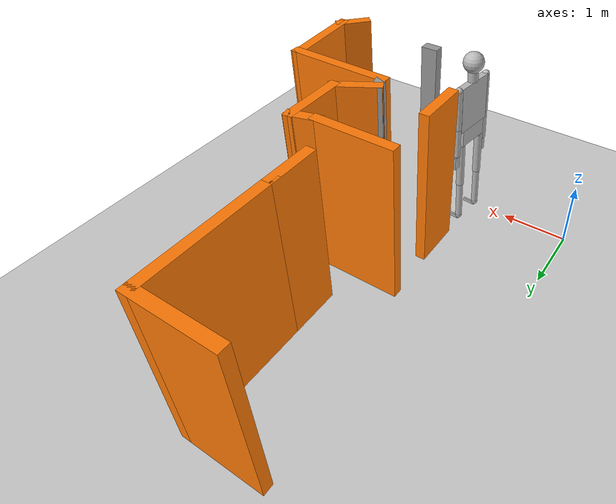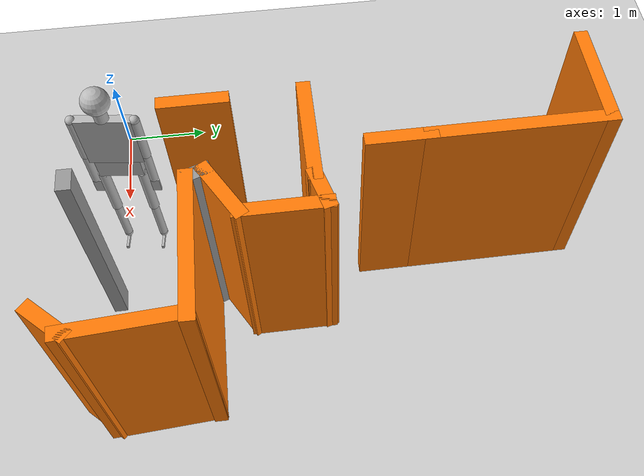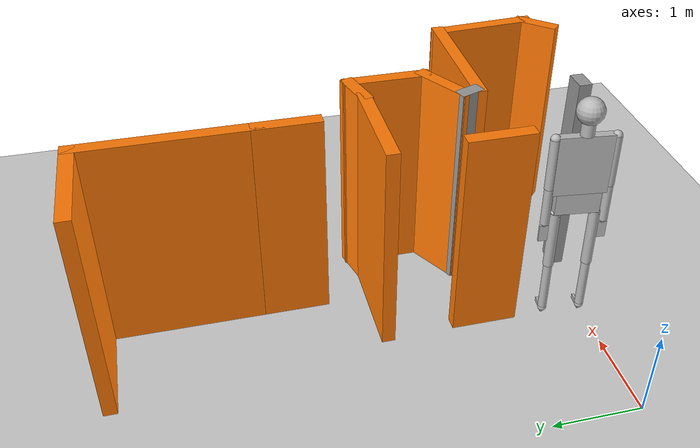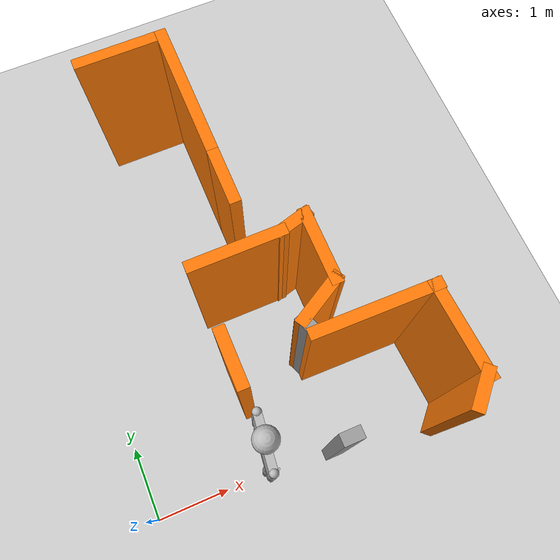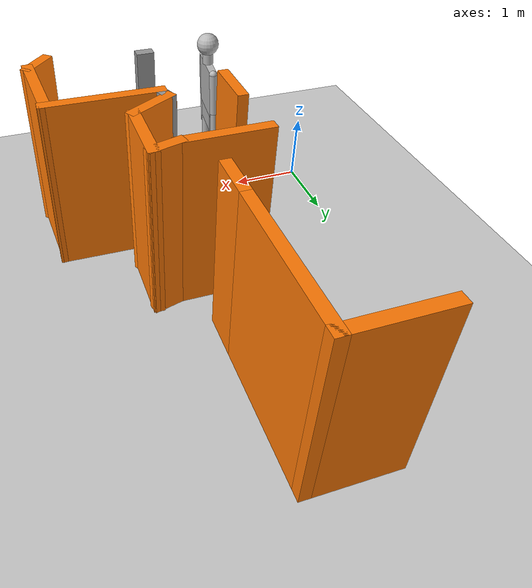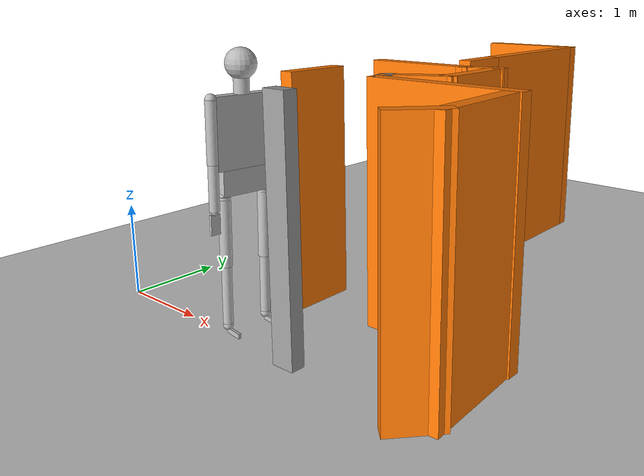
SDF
<sdf version="1.7">
 <world name="default">
  <model name="ground_plane">
   <static>1</static>
   <link name="link">
    <collision name="collision">
     <geometry><plane><normal>0 0 1</normal><size>100 100</size></plane></geometry>
     <surface>
      <contact><collide_bitmask>65535</collide_bitmask></contact>
      <friction><ode><mu>100</mu><mu2>50</mu2></ode></friction>
     </surface>
    </collision>
    <visual name="visual">
     <cast_shadows>0</cast_shadows>
     <geometry><plane><normal>0 0 1</normal><size>100 100</size></plane></geometry>
     <material>
      <script><uri>file://media/materials/scripts/gazebo.material</uri><name>Gazebo/Grey</name></script>
     </material>
    </visual>
   </link>
  </model>
  <model name="map_4">
   <pose>0.04124 -0.27835 0 0 -0 0</pose>
   <link name="Wall_122">
    <collision name="Wall_122_Collision">
     <geometry><box><size>0.75 0.15 2.5</size></box></geometry>
     <pose>0 0 1.25 0 -0 0</pose>
    </collision>
    <visual name="Wall_122_Visual">
     <pose>0 0 1.25 0 -0 0</pose>
     <geometry><box><size>0.75 0.15 2.5</size></box></geometry>
     <material>
      <script><uri>file://media/materials/scripts/gazebo.material</uri><name>Gazebo/Grey</name></script>
      <ambient>0.996078 0.47451 0.0196078 1</ambient>
     </material>
     <meta><layer>0</layer></meta>
    </visual>
    <pose>1.61782 1.43727 0 0 -0 -1.5708</pose>
   </link>
   <link name="Wall_134">
    <collision name="Wall_134_Collision">
     <geometry><box><size>0.25 0.15 2.5</size></box></geometry>
     <pose>0 0 1.25 0 -0 0</pose>
    </collision>
    <visual name="Wall_134_Visual">
     <pose>0 0 1.25 0 -0 0</pose>
     <geometry><box><size>0.25 0.15 2.5</size></box></geometry>
     <material>
      <script><uri>file://media/materials/scripts/gazebo.material</uri><name>Gazebo/Grey</name></script>
      <ambient>1 1 1 1</ambient>
     </material>
     <meta><layer>0</layer></meta>
    </visual>
    <pose>2.46924 0.189335 0 0 -0 0</pose>
   </link>
   <link name="Wall_140">
    <collision name="Wall_140_Collision">
     <geometry><box><size>0.53772 0.15 2.5</size></box></geometry>
     <pose>0 0 1.25 0 -0 0</pose>
    </collision>
    <visual name="Wall_140_Visual">
     <pose>0 0 1.25 0 -0 0</pose>
     <geometry><box><size>0.53772 0.15 2.5</size></box></geometry>
     <material>
      <script><uri>file://media/materials/scripts/gazebo.material</uri><name>Gazebo/Grey</name></script>
      <ambient>0.996078 0.47451 0.0196078 1</ambient>
     </material>
     <meta><layer>0</layer></meta>
    </visual>
    <pose>3.95601 0.095884 0 0 -0 0.827595</pose>
   </link>
   <link name="Wall_141">
    <collision name="Wall_141_Collision">
     <geometry><box><size>1.27527 0.15 2.5</size></box></geometry>
     <pose>0 0 1.25 0 -0 0</pose>
    </collision>
    <visual name="Wall_141_Visual">
     <pose>0 0 1.25 0 -0 0</pose>
     <geometry><box><size>1.27527 0.15 2.5</size></box></geometry>
     <material>
      <script><uri>file://media/materials/scripts/gazebo.material</uri><name>Gazebo/Grey</name></script>
      <ambient>0.996078 0.47451 0.0196078 1</ambient>
     </material>
     <meta><layer>0</layer></meta>
    </visual>
    <pose>4.05249 0.753929 0 0 -0 1.6325</pose>
   </link>
   <link name="Wall_142">
    <collision name="Wall_142_Collision">
     <geometry><box><size>1.63453 0.15 2.5</size></box></geometry>
     <pose>0 0 1.25 0 -0 0</pose>
    </collision>
    <visual name="Wall_142_Visual">
     <pose>0 0 1.25 0 -0 0</pose>
     <geometry><box><size>1.63453 0.15 2.5</size></box></geometry>
     <material>
      <script><uri>file://media/materials/scripts/gazebo.material</uri><name>Gazebo/Grey</name></script>
      <ambient>0.996078 0.47451 0.0196078 1</ambient>
     </material>
     <meta><layer>0</layer></meta>
    </visual>
    <pose>3.29875 1.32706 0 0 -0 3.12601</pose>
   </link>
   <link name="Wall_143">
    <collision name="Wall_143_Collision">
     <geometry><box><size>0.29196 0.15 2.5</size></box></geometry>
     <pose>0 0 1.25 0 -0 0</pose>
    </collision>
    <visual name="Wall_143_Visual">
     <pose>0 0 1.25 0 -0 0</pose>
     <geometry><box><size>0.29196 0.15 2.5</size></box></geometry>
     <material>
      <script><uri>file://media/materials/scripts/gazebo.material</uri><name>Gazebo/Grey</name></script>
      <ambient>1 1 1 1</ambient>
     </material>
     <meta><layer>0</layer></meta>
    </visual>
    <pose>2.53157 1.45132 0 0 -0 1.93073</pose>
   </link>
   <link name="Wall_144">
    <collision name="Wall_144_Collision">
     <geometry><box><size>0.75 0.15 2.5</size></box></geometry>
     <pose>0 0 1.25 0 -0 0</pose>
    </collision>
    <visual name="Wall_144_Visual">
     <pose>0 0 1.25 0 -0 0</pose>
     <geometry><box><size>0.75 0.15 2.5</size></box></geometry>
     <material>
      <script><uri>file://media/materials/scripts/gazebo.material</uri><name>Gazebo/Grey</name></script>
      <ambient>0.996078 0.47451 0.0196078 1</ambient>
     </material>
     <meta><layer>0</layer></meta>
    </visual>
    <pose>2.76638 1.66775 0 0 -0 0.523599</pose>
   </link>
   <link name="Wall_146">
    <collision name="Wall_146_Collision">
     <geometry><box><size>1 0.15 2.5</size></box></geometry>
     <pose>0 0 1.25 0 -0 0</pose>
    </collision>
    <visual name="Wall_146_Visual">
     <pose>0 0 1.25 0 -0 0</pose>
     <geometry><box><size>1 0.15 2.5</size></box></geometry>
     <material>
      <script><uri>file://media/materials/scripts/gazebo.material</uri><name>Gazebo/Grey</name></script>
      <ambient>0.996078 0.47451 0.0196078 1</ambient>
     </material>
     <meta><layer>0</layer></meta>
    </visual>
    <pose>3.02619 2.24275 0 0 -0 1.5708</pose>
   </link>
   <link name="Wall_147">
    <collision name="Wall_147_Collision">
     <geometry><box><size>0.5 0.15 2.5</size></box></geometry>
     <pose>0 0 1.25 0 -0 0</pose>
    </collision>
    <visual name="Wall_147_Visual">
     <pose>0 0 1.25 0 -0 0</pose>
     <geometry><box><size>0.5 0.15 2.5</size></box></geometry>
     <material>
      <script><uri>file://media/materials/scripts/gazebo.material</uri><name>Gazebo/Grey</name></script>
      <ambient>0.996078 0.47451 0.0196078 1</ambient>
     </material>
     <meta><layer>0</layer></meta>
    </visual>
    <pose>2.85715 2.62246 0 0 -0 -2.87979</pose>
   </link>
   <link name="Wall_148">
    <collision name="Wall_148_Collision">
     <geometry><box><size>1.25 0.15 2.5</size></box></geometry>
     <pose>0 0 1.25 0 -0 0</pose>
    </collision>
    <visual name="Wall_148_Visual">
     <pose>0 0 1.25 0 -0 0</pose>
     <geometry><box><size>1.25 0.15 2.5</size></box></geometry>
     <material>
      <script><uri>file://media/materials/scripts/gazebo.material</uri><name>Gazebo/Grey</name></script>
      <ambient>0.996078 0.47451 0.0196078 1</ambient>
     </material>
     <meta><layer>0</layer></meta>
    </visual>
    <pose>2.13811 2.57716 0 0 -0 3.14159</pose>
   </link>
   <link name="Wall_153">
    <collision name="Wall_153_Collision">
     <geometry><box><size>0.75 0.15 2.5</size></box></geometry>
     <pose>0 0 1.25 0 -0 0</pose>
    </collision>
    <visual name="Wall_153_Visual">
     <pose>0 0 1.25 0 -0 0</pose>
     <geometry><box><size>0.75 0.15 2.5</size></box></geometry>
     <material>
      <script><uri>file://media/materials/scripts/gazebo.material</uri><name>Gazebo/Grey</name></script>
      <ambient>0.996078 0.47451 0.0196078 1</ambient>
     </material>
     <meta><layer>0</layer></meta>
    </visual>
    <pose>2.34063 3.47465 0 0 -0 1.5708</pose>
   </link>
   <link name="Wall_154">
    <collision name="Wall_154_Collision">
     <geometry><box><size>2 0.15 2.5</size></box></geometry>
     <pose>0 0 1.25 0 -0 0</pose>
    </collision>
    <visual name="Wall_154_Visual">
     <pose>0 0 1.25 0 -0 0</pose>
     <geometry><box><size>2 0.15 2.5</size></box></geometry>
     <material>
      <script><uri>file://media/materials/scripts/gazebo.material</uri><name>Gazebo/Grey</name></script>
      <ambient>0.996078 0.47451 0.0196078 1</ambient>
     </material>
     <meta><layer>0</layer></meta>
    </visual>
    <pose>2.34063 4.69965 0 0 -0 1.5708</pose>
   </link>
   <link name="Wall_159">
    <collision name="Wall_159_Collision">
     <geometry><box><size>1.25 0.15 2.5</size></box></geometry>
     <pose>0 0 1.25 0 -0 0</pose>
    </collision>
    <visual name="Wall_159_Visual">
     <pose>0 0 1.25 0 -0 0</pose>
     <geometry><box><size>1.25 0.15 2.5</size></box></geometry>
     <material>
      <script><uri>file://media/materials/scripts/gazebo.material</uri><name>Gazebo/Grey</name></script>
      <ambient>0.996078 0.47451 0.0196078 1</ambient>
     </material>
     <meta><layer>0</layer></meta>
    </visual>
    <pose>1.79063 5.62465 0 0 -0 3.14159</pose>
   </link>
   <static>1</static>
  </model>
  <model name="ragdoll">
   <pose>1.63109 0.219193 1.39973 -5.3e-05 0.035778 -0.116369</pose>
   <link name="hip">
    <inertial>
     <inertia><ixx>0.1</ixx><ixy>0</ixy><ixz>0</ixz><iyy>0.1</iyy><iyz>0</iyz><izz>0.1</izz></inertia>
     <mass>10</mass>
    </inertial>
    <collision name="hip_geom">
     <pose>0 0 0.125 0 -0 0</pose>
     <geometry><box><size>0.1 0.5 0.25</size></box></geometry>
     <surface>
      <friction><ode><mu>-1</mu><mu2>-1</mu2><fdir1>0 0 0</fdir1><slip1>0</slip1><slip2>0</slip2></ode></friction>
      <bounce><restitution_coefficient>0</restitution_coefficient><threshold>100000</threshold></bounce>
      <contact>
       <ode>
        <soft_cfm>0</soft_cfm>
        <soft_erp>0.2</soft_erp>
        <kp>1e+12</kp>
        <kd>1</kd>
        <max_vel>0</max_vel>
        <min_depth>0.001</min_depth>
       </ode>
      </contact>
     </surface>
    </collision>
    <visual name="hip_geom_visual">
     <pose>0 0 0.125 0 -0 0</pose>
     <geometry><box><size>0.1 0.5 0.25</size></box></geometry>
    </visual>
    <gravity>0</gravity>
   </link>
   <link name="l_thigh_pan">
    <pose>0 0.22 0 0 -0 0</pose>
    <inertial>
     <inertia><ixx>0.01</ixx><ixy>0</ixy><ixz>0</ixz><iyy>0.01</iyy><iyz>0</iyz><izz>0.01</izz></inertia>
     <mass>1</mass>
    </inertial>
    <collision name="l_thigh_pan_geom">
     <pose>0 0 -0.03 0 -0 0</pose>
     <geometry><sphere><radius>0.06</radius></sphere></geometry>
     <surface>
      <friction><ode><mu>-1</mu><mu2>-1</mu2><fdir1>0 0 0</fdir1><slip1>0</slip1><slip2>0</slip2></ode></friction>
      <bounce><restitution_coefficient>0</restitution_coefficient><threshold>100000</threshold></bounce>
      <contact>
       <ode>
        <soft_cfm>0</soft_cfm>
        <soft_erp>0.2</soft_erp>
        <kp>1e+12</kp>
        <kd>1</kd>
        <max_vel>0</max_vel>
        <min_depth>0.001</min_depth>
       </ode>
      </contact>
     </surface>
    </collision>
    <visual name="l_thigh_pan_geom_visual">
     <pose>0 0 -0.03 0 -0 0</pose>
     <geometry><sphere><radius>0.06</radius></sphere></geometry>
    </visual>
    <gravity>0</gravity>
   </link>
   <link name="l_thigh_lift">
    <pose>0 0.22 0 0 -0 0</pose>
    <inertial>
     <inertia><ixx>0.05</ixx><ixy>0</ixy><ixz>0</ixz><iyy>0.05</iyy><iyz>0</iyz><izz>0.05</izz></inertia>
     <mass>5</mass>
    </inertial>
    <collision name="l_thigh_lift_geom">
     <pose>0 0 -0.35 0 -0 0</pose>
     <geometry><cylinder><radius>0.06</radius><length>0.7</length></cylinder></geometry>
     <surface>
      <friction><ode><mu>-1</mu><mu2>-1</mu2><fdir1>0 0 0</fdir1><slip1>0</slip1><slip2>0</slip2></ode></friction>
      <bounce><restitution_coefficient>0</restitution_coefficient><threshold>100000</threshold></bounce>
      <contact>
       <ode>
        <soft_cfm>0</soft_cfm>
        <soft_erp>0.2</soft_erp>
        <kp>1e+12</kp>
        <kd>1</kd>
        <max_vel>0</max_vel>
        <min_depth>0.001</min_depth>
       </ode>
      </contact>
     </surface>
    </collision>
    <visual name="l_thigh_lift_geom_visual">
     <pose>0 0 -0.35 0 -0 0</pose>
     <geometry><cylinder><radius>0.06</radius><length>0.7</length></cylinder></geometry>
    </visual>
    <gravity>0</gravity>
   </link>
   <link name="l_calf">
    <pose>0 0.22 -0.7 0 -0 0</pose>
    <inertial>
     <inertia><ixx>0.02</ixx><ixy>0</ixy><ixz>0</ixz><iyy>0.02</iyy><iyz>0</iyz><izz>0.02</izz></inertia>
     <mass>2</mass>
    </inertial>
    <collision name="l_calf_geom">
     <pose>0 0 -0.3 0 -0 0</pose>
     <geometry><cylinder><radius>0.05</radius><length>0.6</length></cylinder></geometry>
     <surface>
      <friction><ode><mu>-1</mu><mu2>-1</mu2><fdir1>0 0 0</fdir1><slip1>0</slip1><slip2>0</slip2></ode></friction>
      <bounce><restitution_coefficient>0</restitution_coefficient><threshold>100000</threshold></bounce>
      <contact>
       <ode>
        <soft_cfm>0</soft_cfm>
        <soft_erp>0.2</soft_erp>
        <kp>1e+12</kp>
        <kd>1</kd>
        <max_vel>0</max_vel>
        <min_depth>0.001</min_depth>
       </ode>
      </contact>
     </surface>
    </collision>
    <visual name="l_calf_geom_visual">
     <pose>0 0 -0.3 0 -0 0</pose>
     <geometry><cylinder><radius>0.05</radius><length>0.6</length></cylinder></geometry>
    </visual>
    <gravity>0</gravity>
   </link>
   <link name="l_ankle">
    <pose>0 0.22 -1.325 0 -0 0</pose>
    <inertial>
     <inertia><ixx>0.01</ixx><ixy>0</ixy><ixz>0</ixz><iyy>0.01</iyy><iyz>0</iyz><izz>0.01</izz></inertia>
     <mass>1</mass>
    </inertial>
    <collision name="l_ankle_geom">
     <geometry><sphere><radius>0.05</radius></sphere></geometry>
     <surface>
      <friction><ode><mu>-1</mu><mu2>-1</mu2><fdir1>0 0 0</fdir1><slip1>0</slip1><slip2>0</slip2></ode></friction>
      <bounce><restitution_coefficient>0</restitution_coefficient><threshold>100000</threshold></bounce>
      <contact>
       <ode>
        <soft_cfm>0</soft_cfm>
        <soft_erp>0.2</soft_erp>
        <kp>1e+12</kp>
        <kd>1</kd>
        <max_vel>0</max_vel>
        <min_depth>0.001</min_depth>
       </ode>
      </contact>
     </surface>
    </collision>
    <visual name="l_ankle_geom_visual"><geometry><sphere><radius>0.05</radius></sphere></geometry></visual>
    <gravity>0</gravity>
   </link>
   <link name="l_foot">
    <pose>0 0.22 -1.35 0 -0 0</pose>
    <inertial>
     <pose>0.1 0 0 0 -0 0</pose>
     <inertia><ixx>0.01</ixx><ixy>0</ixy><ixz>0</ixz><iyy>0.01</iyy><iyz>0</iyz><izz>0.01</izz></inertia>
     <mass>1</mass>
    </inertial>
    <collision name="l_foot_geom">
     <pose>0.1 0 -0.025 0 -0 0</pose>
     <geometry><box><size>0.2 0.03 0.05</size></box></geometry>
     <surface>
      <friction><ode><mu>-1</mu><mu2>-1</mu2><fdir1>0 0 0</fdir1><slip1>0</slip1><slip2>0</slip2></ode></friction>
      <bounce><restitution_coefficient>0</restitution_coefficient><threshold>100000</threshold></bounce>
      <contact>
       <ode>
        <soft_cfm>0</soft_cfm>
        <soft_erp>0.2</soft_erp>
        <kp>1e+12</kp>
        <kd>1</kd>
        <max_vel>0</max_vel>
        <min_depth>0.001</min_depth>
       </ode>
      </contact>
     </surface>
    </collision>
    <visual name="l_foot_geom_visual">
     <pose>0.1 0 -0.025 0 -0 0</pose>
     <geometry><box><size>0.2 0.03 0.05</size></box></geometry>
    </visual>
   </link>
   <link name="r_thigh_pan">
    <pose>0 -0.22 0 0 -0 0</pose>
    <inertial>
     <inertia><ixx>0.01</ixx><ixy>0</ixy><ixz>0</ixz><iyy>0.01</iyy><iyz>0</iyz><izz>0.01</izz></inertia>
     <mass>1</mass>
    </inertial>
    <collision name="r_thigh_pan_geom">
     <pose>0 0 -0.03 0 -0 0</pose>
     <geometry><sphere><radius>0.06</radius></sphere></geometry>
     <surface>
      <friction><ode><mu>-1</mu><mu2>-1</mu2><fdir1>0 0 0</fdir1><slip1>0</slip1><slip2>0</slip2></ode></friction>
      <bounce><restitution_coefficient>0</restitution_coefficient><threshold>100000</threshold></bounce>
      <contact>
       <ode>
        <soft_cfm>0</soft_cfm>
        <soft_erp>0.2</soft_erp>
        <kp>1e+12</kp>
        <kd>1</kd>
        <max_vel>0</max_vel>
        <min_depth>0.001</min_depth>
       </ode>
      </contact>
     </surface>
    </collision>
    <visual name="r_thigh_pan_geom_visual">
     <pose>0 0 -0.03 0 -0 0</pose>
     <geometry><sphere><radius>0.06</radius></sphere></geometry>
    </visual>
    <gravity>0</gravity>
   </link>
   <link name="r_thigh_lift">
    <pose>0 -0.22 0 0 -0 0</pose>
    <inertial>
     <inertia><ixx>0.05</ixx><ixy>0</ixy><ixz>0</ixz><iyy>0.05</iyy><iyz>0</iyz><izz>0.05</izz></inertia>
     <mass>5</mass>
    </inertial>
    <collision name="r_thigh_lift_geom">
     <pose>0 0 -0.35 0 -0 0</pose>
     <geometry><cylinder><radius>0.06</radius><length>0.7</length></cylinder></geometry>
     <surface>
      <friction><ode><mu>-1</mu><mu2>-1</mu2><fdir1>0 0 0</fdir1><slip1>0</slip1><slip2>0</slip2></ode></friction>
      <bounce><restitution_coefficient>0</restitution_coefficient><threshold>100000</threshold></bounce>
      <contact>
       <ode>
        <soft_cfm>0</soft_cfm>
        <soft_erp>0.2</soft_erp>
        <kp>1e+12</kp>
        <kd>1</kd>
        <max_vel>0</max_vel>
        <min_depth>0.001</min_depth>
       </ode>
      </contact>
     </surface>
    </collision>
    <visual name="r_thigh_lift_geom_visual">
     <pose>0 0 -0.35 0 -0 0</pose>
     <geometry><cylinder><radius>0.06</radius><length>0.7</length></cylinder></geometry>
    </visual>
    <gravity>0</gravity>
   </link>
   <link name="r_calf">
    <pose>0 -0.22 -0.7 0 -0 0</pose>
    <inertial>
     <inertia><ixx>0.02</ixx><ixy>0</ixy><ixz>0</ixz><iyy>0.02</iyy><iyz>0</iyz><izz>0.02</izz></inertia>
     <mass>2</mass>
    </inertial>
    <collision name="r_calf_geom">
     <pose>0 0 -0.3 0 -0 0</pose>
     <geometry><cylinder><radius>0.05</radius><length>0.6</length></cylinder></geometry>
     <surface>
      <friction><ode><mu>-1</mu><mu2>-1</mu2><fdir1>0 0 0</fdir1><slip1>0</slip1><slip2>0</slip2></ode></friction>
      <bounce><restitution_coefficient>0</restitution_coefficient><threshold>100000</threshold></bounce>
      <contact>
       <ode>
        <soft_cfm>0</soft_cfm>
        <soft_erp>0.2</soft_erp>
        <kp>1e+12</kp>
        <kd>1</kd>
        <max_vel>0</max_vel>
        <min_depth>0.001</min_depth>
       </ode>
      </contact>
     </surface>
    </collision>
    <visual name="r_calf_geom_visual">
     <pose>0 0 -0.3 0 -0 0</pose>
     <geometry><cylinder><radius>0.05</radius><length>0.6</length></cylinder></geometry>
    </visual>
    <gravity>0</gravity>
   </link>
   <link name="r_ankle">
    <pose>0 -0.22 -1.325 0 -0 0</pose>
    <inertial>
     <inertia><ixx>0.01</ixx><ixy>0</ixy><ixz>0</ixz><iyy>0.01</iyy><iyz>0</iyz><izz>0.01</izz></inertia>
     <mass>1</mass>
    </inertial>
    <collision name="r_ankle_geom">
     <geometry><sphere><radius>0.05</radius></sphere></geometry>
     <surface>
      <friction><ode><mu>-1</mu><mu2>-1</mu2><fdir1>0 0 0</fdir1><slip1>0</slip1><slip2>0</slip2></ode></friction>
      <bounce><restitution_coefficient>0</restitution_coefficient><threshold>100000</threshold></bounce>
      <contact>
       <ode>
        <soft_cfm>0</soft_cfm>
        <soft_erp>0.2</soft_erp>
        <kp>1e+12</kp>
        <kd>1</kd>
        <max_vel>0</max_vel>
        <min_depth>0.001</min_depth>
       </ode>
      </contact>
     </surface>
    </collision>
    <visual name="r_ankle_geom_visual"><geometry><sphere><radius>0.05</radius></sphere></geometry></visual>
    <gravity>0</gravity>
   </link>
   <link name="r_foot">
    <pose>0 -0.22 -1.35 0 -0 0</pose>
    <inertial>
     <pose>0.1 0 0 0 -0 0</pose>
     <inertia><ixx>0.01</ixx><ixy>0</ixy><ixz>0</ixz><iyy>0.01</iyy><iyz>0</iyz><izz>0.01</izz></inertia>
     <mass>1</mass>
    </inertial>
    <collision name="r_foot_geom">
     <pose>0.1 0 -0.025 0 -0 0</pose>
     <geometry><box><size>0.2 0.03 0.05</size></box></geometry>
     <surface>
      <friction><ode><mu>-1</mu><mu2>-1</mu2><fdir1>0 0 0</fdir1><slip1>0</slip1><slip2>0</slip2></ode></friction>
      <bounce><restitution_coefficient>0</restitution_coefficient><threshold>100000</threshold></bounce>
      <contact>
       <ode>
        <soft_cfm>0</soft_cfm>
        <soft_erp>0.2</soft_erp>
        <kp>1e+12</kp>
        <kd>1</kd>
        <max_vel>0</max_vel>
        <min_depth>0.001</min_depth>
       </ode>
      </contact>
     </surface>
    </collision>
    <visual name="r_foot_geom_visual">
     <pose>0.1 0 -0.025 0 -0 0</pose>
     <geometry><box><size>0.2 0.03 0.05</size></box></geometry>
    </visual>
   </link>
   <link name="torso">
    <pose>0 0 0.25 0 -0 0</pose>
    <inertial>
     <inertia><ixx>0.3</ixx><ixy>0</ixy><ixz>0</ixz><iyy>0.3</iyy><iyz>0</iyz><izz>0.3</izz></inertia>
     <mass>30</mass>
    </inertial>
    <collision name="torso_geom">
     <pose>0 0 0.35 0 -0 0</pose>
     <geometry><box><size>0.1 0.6 0.7</size></box></geometry>
     <surface>
      <friction><ode><mu>-1</mu><mu2>-1</mu2><fdir1>0 0 0</fdir1><slip1>0</slip1><slip2>0</slip2></ode></friction>
      <bounce><restitution_coefficient>0</restitution_coefficient><threshold>100000</threshold></bounce>
      <contact>
       <ode>
        <soft_cfm>0</soft_cfm>
        <soft_erp>0.2</soft_erp>
        <kp>1e+12</kp>
        <kd>1</kd>
        <max_vel>0</max_vel>
        <min_depth>0.001</min_depth>
       </ode>
      </contact>
     </surface>
    </collision>
    <visual name="torso_geom_visual">
     <pose>0 0 0.35 0 -0 0</pose>
     <geometry><box><size>0.1 0.6 0.7</size></box></geometry>
    </visual>
    <gravity>0</gravity>
   </link>
   <link name="l_shoulder">
    <pose>0 0.3275 0.9225 0 -0 0</pose>
    <inertial>
     <inertia><ixx>0.01</ixx><ixy>0</ixy><ixz>0</ixz><iyy>0.01</iyy><iyz>0</iyz><izz>0.01</izz></inertia>
     <mass>1</mass>
    </inertial>
    <collision name="l_shoulder_geom">
     <geometry><sphere><radius>0.055</radius></sphere></geometry>
     <surface>
      <friction><ode><mu>-1</mu><mu2>-1</mu2><fdir1>0 0 0</fdir1><slip1>0</slip1><slip2>0</slip2></ode></friction>
      <bounce><restitution_coefficient>0</restitution_coefficient><threshold>100000</threshold></bounce>
      <contact>
       <ode>
        <soft_cfm>0</soft_cfm>
        <soft_erp>0.2</soft_erp>
        <kp>1e+12</kp>
        <kd>1</kd>
        <max_vel>0</max_vel>
        <min_depth>0.001</min_depth>
       </ode>
      </contact>
     </surface>
    </collision>
    <visual name="l_shoulder_geom_visual"><geometry><sphere><radius>0.055</radius></sphere></geometry></visual>
    <gravity>0</gravity>
   </link>
   <link name="l_upper_arm">
    <pose>0 0.3275 0.9225 0 -0 0</pose>
    <inertial>
     <inertia><ixx>0.02</ixx><ixy>0</ixy><ixz>0</ixz><iyy>0.02</iyy><iyz>0</iyz><izz>0.02</izz></inertia>
     <mass>2</mass>
    </inertial>
    <collision name="l_upper_arm_geom">
     <pose>0 0 -0.3 0 -0 0</pose>
     <geometry><cylinder><radius>0.055</radius><length>0.6</length></cylinder></geometry>
     <surface>
      <friction><ode><mu>-1</mu><mu2>-1</mu2><fdir1>0 0 0</fdir1><slip1>0</slip1><slip2>0</slip2></ode></friction>
      <bounce><restitution_coefficient>0</restitution_coefficient><threshold>100000</threshold></bounce>
      <contact>
       <ode>
        <soft_cfm>0</soft_cfm>
        <soft_erp>0.2</soft_erp>
        <kp>1e+12</kp>
        <kd>1</kd>
        <max_vel>0</max_vel>
        <min_depth>0.001</min_depth>
       </ode>
      </contact>
     </surface>
    </collision>
    <visual name="l_upper_arm_geom_visual">
     <pose>0 0 -0.3 0 -0 0</pose>
     <geometry><cylinder><radius>0.055</radius><length>0.6</length></cylinder></geometry>
    </visual>
    <gravity>0</gravity>
   </link>
   <link name="l_forearm">
    <pose>0 0.3275 0.3225 0 -0 0</pose>
    <inertial>
     <inertia><ixx>0.01</ixx><ixy>0</ixy><ixz>0</ixz><iyy>0.01</iyy><iyz>0</iyz><izz>0.01</izz></inertia>
     <mass>1</mass>
    </inertial>
    <collision name="l_forearm_geom">
     <pose>0 0 -0.225 0 -0 0</pose>
     <geometry><cylinder><radius>0.05</radius><length>0.45</length></cylinder></geometry>
     <surface>
      <friction><ode><mu>-1</mu><mu2>-1</mu2><fdir1>0 0 0</fdir1><slip1>0</slip1><slip2>0</slip2></ode></friction>
      <bounce><restitution_coefficient>0</restitution_coefficient><threshold>100000</threshold></bounce>
      <contact>
       <ode>
        <soft_cfm>0</soft_cfm>
        <soft_erp>0.2</soft_erp>
        <kp>1e+12</kp>
        <kd>1</kd>
        <max_vel>0</max_vel>
        <min_depth>0.001</min_depth>
       </ode>
      </contact>
     </surface>
    </collision>
    <visual name="l_forearm_geom_visual">
     <pose>0 0 -0.225 0 -0 0</pose>
     <geometry><cylinder><radius>0.05</radius><length>0.45</length></cylinder></geometry>
    </visual>
    <gravity>0</gravity>
   </link>
   <link name="l_wrist">
    <pose>0 0.3275 -0.1425 0 -0 0</pose>
    <inertial>
     <inertia><ixx>0.01</ixx><ixy>0</ixy><ixz>0</ixz><iyy>0.01</iyy><iyz>0</iyz><izz>0.01</izz></inertia>
     <mass>1</mass>
    </inertial>
    <collision name="l_wrist_geom">
     <geometry><sphere><radius>0.03</radius></sphere></geometry>
     <surface>
      <friction><ode><mu>-1</mu><mu2>-1</mu2><fdir1>0 0 0</fdir1><slip1>0</slip1><slip2>0</slip2></ode></friction>
      <bounce><restitution_coefficient>0</restitution_coefficient><threshold>100000</threshold></bounce>
      <contact>
       <ode>
        <soft_cfm>0</soft_cfm>
        <soft_erp>0.2</soft_erp>
        <kp>1e+12</kp>
        <kd>1</kd>
        <max_vel>0</max_vel>
        <min_depth>0.001</min_depth>
       </ode>
      </contact>
     </surface>
    </collision>
    <visual name="l_wrist_geom_visual"><geometry><sphere><radius>0.03</radius></sphere></geometry></visual>
    <gravity>0</gravity>
   </link>
   <link name="l_hand">
    <pose>0 0.3275 -0.1575 0 -0 0</pose>
    <inertial>
     <inertia><ixx>0.01</ixx><ixy>0</ixy><ixz>0</ixz><iyy>0.01</iyy><iyz>0</iyz><izz>0.01</izz></inertia>
     <mass>1</mass>
    </inertial>
    <collision name="l_hand_geom">
     <pose>0 0 -0.1 0 -0 0</pose>
     <geometry><box><size>0.03 0.1 0.2</size></box></geometry>
     <surface>
      <friction><ode><mu>-1</mu><mu2>-1</mu2><fdir1>0 0 0</fdir1><slip1>0</slip1><slip2>0</slip2></ode></friction>
      <bounce><restitution_coefficient>0</restitution_coefficient><threshold>100000</threshold></bounce>
      <contact>
       <ode>
        <soft_cfm>0</soft_cfm>
        <soft_erp>0.2</soft_erp>
        <kp>1e+12</kp>
        <kd>1</kd>
        <max_vel>0</max_vel>
        <min_depth>0.001</min_depth>
       </ode>
      </contact>
     </surface>
    </collision>
    <visual name="l_hand_geom_visual">
     <pose>0 0 -0.1 0 -0 0</pose>
     <geometry><box><size>0.03 0.1 0.2</size></box></geometry>
    </visual>
    <gravity>0</gravity>
   </link>
   <link name="neck">
    <pose>0 0 0.95 0 -0 0</pose>
    <inertial>
     <inertia><ixx>0.01</ixx><ixy>0</ixy><ixz>0</ixz><iyy>0.01</iyy><iyz>0</iyz><izz>0.01</izz></inertia>
     <mass>1</mass>
    </inertial>
    <collision name="neck_geom">
     <pose>0 0 0.1 0 -0 0</pose>
     <geometry><cylinder><radius>0.075</radius><length>0.2</length></cylinder></geometry>
     <surface>
      <friction><ode><mu>-1</mu><mu2>-1</mu2><fdir1>0 0 0</fdir1><slip1>0</slip1><slip2>0</slip2></ode></friction>
      <bounce><restitution_coefficient>0</restitution_coefficient><threshold>100000</threshold></bounce>
      <contact>
       <ode>
        <soft_cfm>0</soft_cfm>
        <soft_erp>0.2</soft_erp>
        <kp>1e+12</kp>
        <kd>1</kd>
        <max_vel>0</max_vel>
        <min_depth>0.001</min_depth>
       </ode>
      </contact>
     </surface>
    </collision>
    <visual name="neck_geom_visual">
     <pose>0 0 0.1 0 -0 0</pose>
     <geometry><cylinder><radius>0.075</radius><length>0.2</length></cylinder></geometry>
    </visual>
    <gravity>0</gravity>
   </link>
   <link name="head">
    <pose>0 0 1.225 0 -0 0</pose>
    <inertial>
     <inertia><ixx>0.1</ixx><ixy>0</ixy><ixz>0</ixz><iyy>0.1</iyy><iyz>0</iyz><izz>0.1</izz></inertia>
     <mass>10</mass>
    </inertial>
    <collision name="head_geom">
     <geometry><sphere><radius>0.15</radius></sphere></geometry>
     <surface>
      <friction><ode><mu>-1</mu><mu2>-1</mu2><fdir1>0 0 0</fdir1><slip1>0</slip1><slip2>0</slip2></ode></friction>
      <bounce><restitution_coefficient>0</restitution_coefficient><threshold>100000</threshold></bounce>
      <contact>
       <ode>
        <soft_cfm>0</soft_cfm>
        <soft_erp>0.2</soft_erp>
        <kp>1e+12</kp>
        <kd>1</kd>
        <max_vel>0</max_vel>
        <min_depth>0.001</min_depth>
       </ode>
      </contact>
     </surface>
    </collision>
    <visual name="head_geom_visual"><geometry><sphere><radius>0.15</radius></sphere></geometry></visual>
    <gravity>0</gravity>
   </link>
   <link name="r_shoulder">
    <pose>0 -0.3275 0.9225 0 -0 0</pose>
    <inertial>
     <inertia><ixx>0.01</ixx><ixy>0</ixy><ixz>0</ixz><iyy>0.01</iyy><iyz>0</iyz><izz>0.01</izz></inertia>
     <mass>1</mass>
    </inertial>
    <collision name="r_shoulder_geom">
     <geometry><sphere><radius>0.055</radius></sphere></geometry>
     <surface>
      <friction><ode><mu>-1</mu><mu2>-1</mu2><fdir1>0 0 0</fdir1><slip1>0</slip1><slip2>0</slip2></ode></friction>
      <bounce><restitution_coefficient>0</restitution_coefficient><threshold>100000</threshold></bounce>
      <contact>
       <ode>
        <soft_cfm>0</soft_cfm>
        <soft_erp>0.2</soft_erp>
        <kp>1e+12</kp>
        <kd>1</kd>
        <max_vel>0</max_vel>
        <min_depth>0.001</min_depth>
       </ode>
      </contact>
     </surface>
    </collision>
    <visual name="r_shoulder_geom_visual"><geometry><sphere><radius>0.055</radius></sphere></geometry></visual>
    <gravity>0</gravity>
   </link>
   <link name="r_upper_arm">
    <pose>0 -0.3275 0.9225 0 -0 0</pose>
    <inertial>
     <inertia><ixx>0.02</ixx><ixy>0</ixy><ixz>0</ixz><iyy>0.02</iyy><iyz>0</iyz><izz>0.02</izz></inertia>
     <mass>2</mass>
    </inertial>
    <collision name="r_upper_arm_geom">
     <pose>0 0 -0.3 0 -0 0</pose>
     <geometry><cylinder><radius>0.055</radius><length>0.6</length></cylinder></geometry>
     <surface>
      <friction><ode><mu>-1</mu><mu2>-1</mu2><fdir1>0 0 0</fdir1><slip1>0</slip1><slip2>0</slip2></ode></friction>
      <bounce><restitution_coefficient>0</restitution_coefficient><threshold>100000</threshold></bounce>
      <contact>
       <ode>
        <soft_cfm>0</soft_cfm>
        <soft_erp>0.2</soft_erp>
        <kp>1e+12</kp>
        <kd>1</kd>
        <max_vel>0</max_vel>
        <min_depth>0.001</min_depth>
       </ode>
      </contact>
     </surface>
    </collision>
    <visual name="r_upper_arm_geom_visual">
     <pose>0 0 -0.3 0 -0 0</pose>
     <geometry><cylinder><radius>0.055</radius><length>0.6</length></cylinder></geometry>
    </visual>
    <gravity>0</gravity>
   </link>
   <link name="r_forearm">
    <pose>0 -0.3275 0.3225 0 -0 0</pose>
    <inertial>
     <inertia><ixx>0.01</ixx><ixy>0</ixy><ixz>0</ixz><iyy>0.01</iyy><iyz>0</iyz><izz>0.01</izz></inertia>
     <mass>1</mass>
    </inertial>
    <collision name="r_forearm_geom">
     <pose>0 0 -0.225 0 -0 0</pose>
     <geometry><cylinder><radius>0.05</radius><length>0.45</length></cylinder></geometry>
     <surface>
      <friction><ode><mu>-1</mu><mu2>-1</mu2><fdir1>0 0 0</fdir1><slip1>0</slip1><slip2>0</slip2></ode></friction>
      <bounce><restitution_coefficient>0</restitution_coefficient><threshold>100000</threshold></bounce>
      <contact>
       <ode>
        <soft_cfm>0</soft_cfm>
        <soft_erp>0.2</soft_erp>
        <kp>1e+12</kp>
        <kd>1</kd>
        <max_vel>0</max_vel>
        <min_depth>0.001</min_depth>
       </ode>
      </contact>
     </surface>
    </collision>
    <visual name="r_forearm_geom_visual">
     <pose>0 0 -0.225 0 -0 0</pose>
     <geometry><cylinder><radius>0.05</radius><length>0.45</length></cylinder></geometry>
    </visual>
    <gravity>0</gravity>
   </link>
   <link name="r_wrist">
    <pose>0 -0.3275 -0.1425 0 -0 0</pose>
    <inertial>
     <inertia><ixx>0.01</ixx><ixy>0</ixy><ixz>0</ixz><iyy>0.01</iyy><iyz>0</iyz><izz>0.01</izz></inertia>
     <mass>1</mass>
    </inertial>
    <collision name="r_wrist_geom">
     <geometry><sphere><radius>0.03</radius></sphere></geometry>
     <surface>
      <friction><ode><mu>-1</mu><mu2>-1</mu2><fdir1>0 0 0</fdir1><slip1>0</slip1><slip2>0</slip2></ode></friction>
      <bounce><restitution_coefficient>0</restitution_coefficient><threshold>100000</threshold></bounce>
      <contact>
       <ode>
        <soft_cfm>0</soft_cfm>
        <soft_erp>0.2</soft_erp>
        <kp>1e+12</kp>
        <kd>1</kd>
        <max_vel>0</max_vel>
        <min_depth>0.001</min_depth>
       </ode>
      </contact>
     </surface>
    </collision>
    <visual name="r_wrist_geom_visual"><geometry><sphere><radius>0.03</radius></sphere></geometry></visual>
    <gravity>0</gravity>
   </link>
   <link name="r_hand">
    <pose>0 -0.3275 -0.1575 0 -0 0</pose>
    <inertial>
     <inertia><ixx>0.01</ixx><ixy>0</ixy><ixz>0</ixz><iyy>0.01</iyy><iyz>0</iyz><izz>0.01</izz></inertia>
     <mass>1</mass>
    </inertial>
    <collision name="r_hand_geom">
     <pose>0 0 -0.1 0 -0 0</pose>
     <geometry><box><size>0.03 0.1 0.2</size></box></geometry>
     <surface>
      <friction><ode><mu>-1</mu><mu2>-1</mu2><fdir1>0 0 0</fdir1><slip1>0</slip1><slip2>0</slip2></ode></friction>
      <bounce><restitution_coefficient>0</restitution_coefficient><threshold>100000</threshold></bounce>
      <contact>
       <ode>
        <soft_cfm>0</soft_cfm>
        <soft_erp>0.2</soft_erp>
        <kp>1e+12</kp>
        <kd>1</kd>
        <max_vel>0</max_vel>
        <min_depth>0.001</min_depth>
       </ode>
      </contact>
     </surface>
    </collision>
    <visual name="r_hand_geom_visual">
     <pose>0 0 -0.1 0 -0 0</pose>
     <geometry><box><size>0.03 0.1 0.2</size></box></geometry>
    </visual>
    <gravity>0</gravity>
   </link>
   <joint name="l_thigh_pan_joint" type="revolute">
    <parent>hip</parent>
    <child>l_thigh_pan</child>
    <axis>
     <dynamics>
      <damping>0</damping>
      <friction>0</friction>
      <spring_reference>0</spring_reference>
      <spring_stiffness>0</spring_stiffness>
     </dynamics>
     <limit><lower>-1.5708</lower><upper>1.5708</upper><effort>0</effort><velocity>0</velocity></limit>
     <xyz expressed_in="__model__">0 0 1</xyz>
    </axis>
   </joint>
   <joint name="l_thigh_lift_joint" type="revolute">
    <parent>l_thigh_pan</parent>
    <child>l_thigh_lift</child>
    <axis>
     <dynamics>
      <damping>0</damping>
      <friction>0</friction>
      <spring_reference>0</spring_reference>
      <spring_stiffness>0</spring_stiffness>
     </dynamics>
     <limit><lower>-1.5708</lower><upper>1.5708</upper><effort>0</effort><velocity>0</velocity></limit>
     <xyz expressed_in="__model__">0 1 0</xyz>
    </axis>
   </joint>
   <joint name="l_calf_joint" type="revolute">
    <parent>l_thigh_lift</parent>
    <child>l_calf</child>
    <axis>
     <dynamics>
      <damping>0</damping>
      <friction>0</friction>
      <spring_reference>0</spring_reference>
      <spring_stiffness>0</spring_stiffness>
     </dynamics>
     <limit><lower>-1.5708</lower><upper>1.5708</upper><effort>0</effort><velocity>0</velocity></limit>
     <xyz expressed_in="__model__">0 1 0</xyz>
    </axis>
   </joint>
   <joint name="l_ankle_joint" type="revolute">
    <parent>l_calf</parent>
    <child>l_ankle</child>
    <axis>
     <dynamics>
      <damping>0</damping>
      <friction>0</friction>
      <spring_reference>0</spring_reference>
      <spring_stiffness>0</spring_stiffness>
     </dynamics>
     <limit><lower>-1.5708</lower><upper>1.5708</upper><effort>0</effort><velocity>0</velocity></limit>
     <xyz expressed_in="__model__">0 1 0</xyz>
    </axis>
   </joint>
   <joint name="l_foot_joint" type="revolute">
    <parent>l_ankle</parent>
    <child>l_foot</child>
    <axis>
     <dynamics>
      <damping>0</damping>
      <friction>0</friction>
      <spring_reference>0</spring_reference>
      <spring_stiffness>0</spring_stiffness>
     </dynamics>
     <limit><lower>-1.5708</lower><upper>1.5708</upper><effort>0</effort><velocity>0</velocity></limit>
     <xyz expressed_in="__model__">1 0 0</xyz>
    </axis>
   </joint>
   <joint name="r_thigh_pan_joint" type="revolute">
    <parent>hip</parent>
    <child>r_thigh_pan</child>
    <axis>
     <dynamics>
      <damping>0</damping>
      <friction>0</friction>
      <spring_reference>0</spring_reference>
      <spring_stiffness>0</spring_stiffness>
     </dynamics>
     <limit><lower>-1.5708</lower><upper>1.5708</upper><effort>0</effort><velocity>0</velocity></limit>
     <xyz expressed_in="__model__">0 0 1</xyz>
    </axis>
   </joint>
   <joint name="r_thigh_lift_joint" type="revolute">
    <parent>r_thigh_pan</parent>
    <child>r_thigh_lift</child>
    <axis>
     <dynamics>
      <damping>0</damping>
      <friction>0</friction>
      <spring_reference>0</spring_reference>
      <spring_stiffness>0</spring_stiffness>
     </dynamics>
     <limit><lower>-1.5708</lower><upper>1.5708</upper><effort>0</effort><velocity>0</velocity></limit>
     <xyz expressed_in="__model__">0 1 0</xyz>
    </axis>
   </joint>
   <joint name="r_calf_joint" type="revolute">
    <parent>r_thigh_lift</parent>
    <child>r_calf</child>
    <axis>
     <dynamics>
      <damping>0</damping>
      <friction>0</friction>
      <spring_reference>0</spring_reference>
      <spring_stiffness>0</spring_stiffness>
     </dynamics>
     <limit><lower>-1.5708</lower><upper>1.5708</upper><effort>0</effort><velocity>0</velocity></limit>
     <xyz expressed_in="__model__">0 1 0</xyz>
    </axis>
   </joint>
   <joint name="r_ankle_joint" type="revolute">
    <parent>r_calf</parent>
    <child>r_ankle</child>
    <axis>
     <dynamics>
      <damping>0</damping>
      <friction>0</friction>
      <spring_reference>0</spring_reference>
      <spring_stiffness>0</spring_stiffness>
     </dynamics>
     <limit><lower>-1.5708</lower><upper>1.5708</upper><effort>0</effort><velocity>0</velocity></limit>
     <xyz expressed_in="__model__">0 1 0</xyz>
    </axis>
   </joint>
   <joint name="r_foot_joint" type="revolute">
    <parent>r_ankle</parent>
    <child>r_foot</child>
    <axis>
     <dynamics>
      <damping>0</damping>
      <friction>0</friction>
      <spring_reference>0</spring_reference>
      <spring_stiffness>0</spring_stiffness>
     </dynamics>
     <limit><lower>-1.5708</lower><upper>1.5708</upper><effort>0</effort><velocity>0</velocity></limit>
     <xyz expressed_in="__model__">1 0 0</xyz>
    </axis>
   </joint>
   <joint name="torso_joint" type="revolute">
    <parent>hip</parent>
    <child>torso</child>
    <axis>
     <dynamics>
      <damping>0</damping>
      <friction>0</friction>
      <spring_reference>0</spring_reference>
      <spring_stiffness>0</spring_stiffness>
     </dynamics>
     <limit><lower>-1.5708</lower><upper>1.5708</upper><effort>0</effort><velocity>0</velocity></limit>
     <xyz expressed_in="__model__">0 1 0</xyz>
    </axis>
   </joint>
   <joint name="l_shoulder_joint" type="revolute">
    <parent>torso</parent>
    <child>l_shoulder</child>
    <axis>
     <dynamics>
      <damping>0</damping>
      <friction>0</friction>
      <spring_reference>0</spring_reference>
      <spring_stiffness>0</spring_stiffness>
     </dynamics>
     <limit><lower>-1.5708</lower><upper>1.5708</upper><effort>0</effort><velocity>0</velocity></limit>
     <xyz expressed_in="__model__">1 0 0</xyz>
    </axis>
   </joint>
   <joint name="l_upper_arm_joint" type="revolute">
    <parent>l_shoulder</parent>
    <child>l_upper_arm</child>
    <axis>
     <dynamics>
      <damping>0</damping>
      <friction>0</friction>
      <spring_reference>0</spring_reference>
      <spring_stiffness>0</spring_stiffness>
     </dynamics>
     <limit><lower>-1.5708</lower><upper>1.5708</upper><effort>0</effort><velocity>0</velocity></limit>
     <xyz expressed_in="__model__">0 1 0</xyz>
    </axis>
   </joint>
   <joint name="l_forearm_joint" type="revolute">
    <parent>l_upper_arm</parent>
    <child>l_forearm</child>
    <axis>
     <dynamics>
      <damping>0</damping>
      <friction>0</friction>
      <spring_reference>0</spring_reference>
      <spring_stiffness>0</spring_stiffness>
     </dynamics>
     <limit><lower>-1.5708</lower><upper>1.5708</upper><effort>0</effort><velocity>0</velocity></limit>
     <xyz expressed_in="__model__">0 1 0</xyz>
    </axis>
   </joint>
   <joint name="l_wrist_joint" type="revolute">
    <parent>l_forearm</parent>
    <child>l_wrist</child>
    <axis>
     <dynamics>
      <damping>0</damping>
      <friction>0</friction>
      <spring_reference>0</spring_reference>
      <spring_stiffness>0</spring_stiffness>
     </dynamics>
     <limit><lower>-1.5708</lower><upper>1.5708</upper><effort>0</effort><velocity>0</velocity></limit>
     <xyz expressed_in="__model__">0 1 0</xyz>
    </axis>
   </joint>
   <joint name="l_hand_joint" type="revolute">
    <parent>l_wrist</parent>
    <child>l_hand</child>
    <axis>
     <dynamics>
      <damping>0</damping>
      <friction>0</friction>
      <spring_reference>0</spring_reference>
      <spring_stiffness>0</spring_stiffness>
     </dynamics>
     <limit><lower>-1.5708</lower><upper>1.5708</upper><effort>0</effort><velocity>0</velocity></limit>
     <xyz expressed_in="__model__">0 1 0</xyz>
    </axis>
   </joint>
   <joint name="neck_joint" type="revolute">
    <parent>torso</parent>
    <child>neck</child>
    <axis>
     <dynamics>
      <damping>0</damping>
      <friction>0</friction>
      <spring_reference>0</spring_reference>
      <spring_stiffness>0</spring_stiffness>
     </dynamics>
     <limit><lower>-1.5708</lower><upper>1.5708</upper><effort>0</effort><velocity>0</velocity></limit>
     <xyz expressed_in="__model__">0 0 1</xyz>
    </axis>
   </joint>
   <joint name="head_joint" type="revolute">
    <parent>neck</parent>
    <child>head</child>
    <axis>
     <dynamics>
      <damping>0</damping>
      <friction>0</friction>
      <spring_reference>0</spring_reference>
      <spring_stiffness>0</spring_stiffness>
     </dynamics>
     <limit><lower>-1.5708</lower><upper>1.5708</upper><effort>0</effort><velocity>0</velocity></limit>
     <xyz expressed_in="__model__">0 1 0</xyz>
    </axis>
   </joint>
   <joint name="r_shoulder_joint" type="revolute">
    <parent>torso</parent>
    <child>r_shoulder</child>
    <axis>
     <dynamics>
      <damping>0</damping>
      <friction>0</friction>
      <spring_reference>0</spring_reference>
      <spring_stiffness>0</spring_stiffness>
     </dynamics>
     <limit><lower>-1.5708</lower><upper>1.5708</upper><effort>0</effort><velocity>0</velocity></limit>
     <xyz expressed_in="__model__">1 0 0</xyz>
    </axis>
   </joint>
   <joint name="r_upper_arm_joint" type="revolute">
    <parent>r_shoulder</parent>
    <child>r_upper_arm</child>
    <axis>
     <dynamics>
      <damping>0</damping>
      <friction>0</friction>
      <spring_reference>0</spring_reference>
      <spring_stiffness>0</spring_stiffness>
     </dynamics>
     <limit><lower>-1.5708</lower><upper>1.5708</upper><effort>0</effort><velocity>0</velocity></limit>
     <xyz expressed_in="__model__">0 1 0</xyz>
    </axis>
   </joint>
   <joint name="r_forearm_joint" type="revolute">
    <parent>r_upper_arm</parent>
    <child>r_forearm</child>
    <axis>
     <dynamics>
      <damping>0</damping>
      <friction>0</friction>
      <spring_reference>0</spring_reference>
      <spring_stiffness>0</spring_stiffness>
     </dynamics>
     <limit><lower>-1.5708</lower><upper>1.5708</upper><effort>0</effort><velocity>0</velocity></limit>
     <xyz expressed_in="__model__">0 1 0</xyz>
    </axis>
   </joint>
   <joint name="r_wrist_joint" type="revolute">
    <parent>r_forearm</parent>
    <child>r_wrist</child>
    <axis>
     <dynamics>
      <damping>0</damping>
      <friction>0</friction>
      <spring_reference>0</spring_reference>
      <spring_stiffness>0</spring_stiffness>
     </dynamics>
     <limit><lower>-1.5708</lower><upper>1.5708</upper><effort>0</effort><velocity>0</velocity></limit>
     <xyz expressed_in="__model__">0 1 0</xyz>
    </axis>
   </joint>
   <joint name="r_hand_joint" type="revolute">
    <parent>r_wrist</parent>
    <child>r_hand</child>
    <axis>
     <dynamics>
      <damping>0</damping>
      <friction>0</friction>
      <spring_reference>0</spring_reference>
      <spring_stiffness>0</spring_stiffness>
     </dynamics>
     <limit><lower>-1.5708</lower><upper>1.5708</upper><effort>0</effort><velocity>0</velocity></limit>
     <xyz expressed_in="__model__">0 1 0</xyz>
    </axis>
   </joint>
   <static>0</static>
  </model>
 </world>
</sdf>
